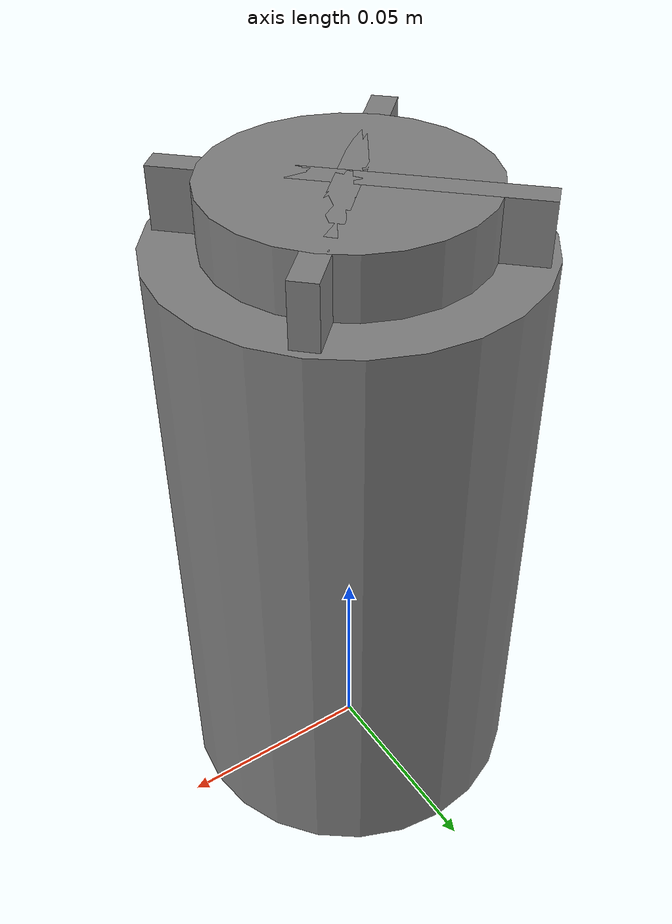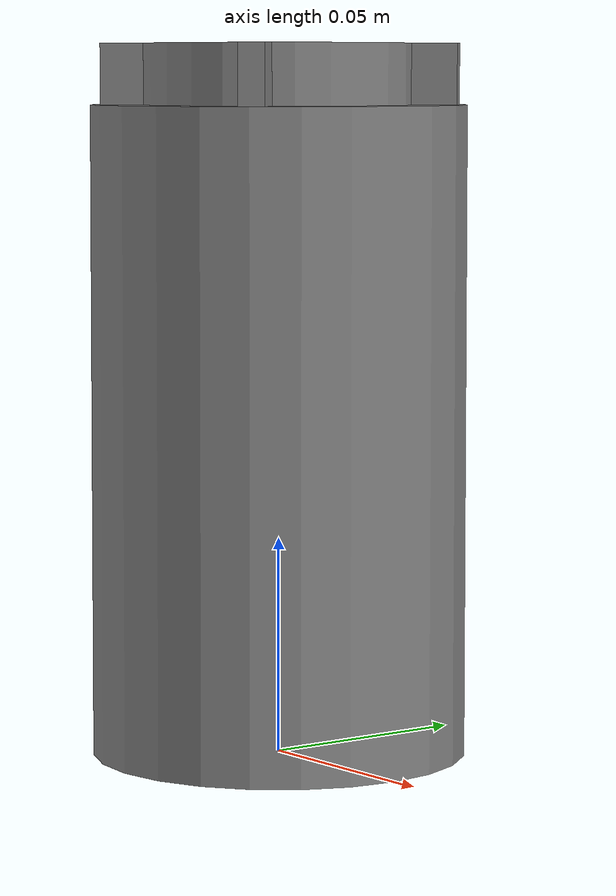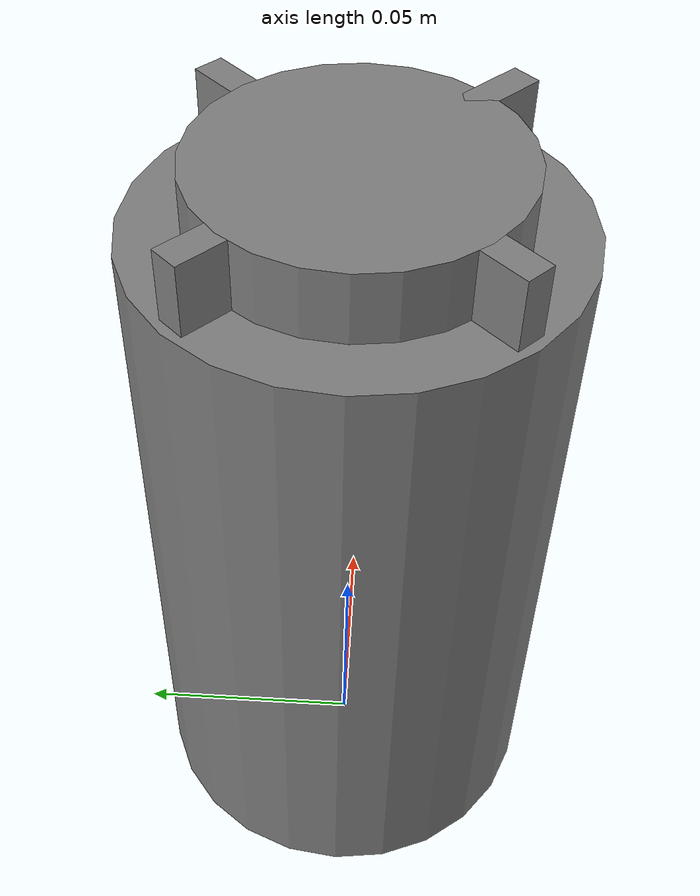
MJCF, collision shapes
<?xml version="1.0" ?>
<!-- @bbox dx=0.086 dy=0.086 dz=0.150 -->
<mujoco model="aspirin_pill_bottle">
  <asset>
    <texture type="2d" name="Diffuse" file="Diffuse.png"/>
    <material name="Diffuse" texture="Diffuse" specular="0.4" shininess="0.001"/>
    <mesh file="aspirin_pill_bottle_body.obj" scale="1 1 1"/>
    <mesh file="aspirin_pill_bottle_cap.obj" scale="1 1 1"/>
  </asset>
  <worldbody>
    <body name="aspirin_pill_bottle" pos="0 0 0">
      <inertial pos="0 0 0.075" mass="0.05" diaginertia="0.0008 0.0008 0.0005"/>
      <geom material="Diffuse" mesh="aspirin_pill_bottle_body" class="visual"/>
      <geom type="cylinder" size="0.0432 0.075" pos="0 0 0.075" class="collision" contype="1" conaffinity="1"/>
      <geom name="neck_collision" type="cylinder" size="0.0288 0.025" pos="0 0 0.13" class="collision" contype="2" conaffinity="2"/>
      <site class="keypoint" pos="0.0432 -0.0432 0.0000"/>
      <site class="keypoint" pos="-0.0432 0.0432 0.0000"/>
      <site class="keypoint" pos="0.0432 0.0432 0.0000"/>
      <site class="keypoint" pos="-0.0432 -0.0432 0.0000"/>
      <site class="placepoint" pos="0.0000 0.0000 0.1537"/>
      <site name="top_site" pos="0 0 0.15" size="0.01" rgba="1 0 0 0"/>
      <site name="bottom_site" pos="0 0 0.0" size="0.01" rgba="0 1 0 0"/>
      <body name="cap" pos="0 0 0.143408">
        <joint name="door" type="hinge" pos="0 0 0" axis="0 0 1" range="-12.5664 0" damping="2"/>
        <joint name="cap_slide" type="slide" pos="0 0 0" axis="0 0 1" range="0 0" damping="100000"/>
        <geom material="Diffuse" mesh="aspirin_pill_bottle_cap" class="visual"/>
        <geom type="cylinder" size="0.0311 0.0103" pos="0 0 0.0103" class="collision" contype="2" conaffinity="1"/>
        <!-- Visual plates (contype=0 conaffinity=0 → rgba renders fully). Rotated 45°. -->
        <!-- Collision plates (contype=2 conaffinity=2). Rotated 45°. -->
        <geom name="grip_plate_x" type="box" size="0.0411 0.003 0.0103" pos="0 0 0.0103" quat="0.9238795 0 0 0.3826834" contype="2" conaffinity="2" group="3" friction="1 1 0.1" density="50" solref="0.001 1"/>
        <geom name="grip_plate_y" type="box" size="0.003 0.0411 0.0103" pos="0 0 0.0103" quat="0.9238795 0 0 0.3826834" contype="2" conaffinity="2" group="3" friction="1 1 0.1" density="50" solref="0.001 1"/>
        <site class="grasppoint" pos="0.0000 0.0000 0.0150"/>
      </body>
    </body>
  </worldbody>
  <compiler boundmass="0.015" boundinertia="1e-05" angle="radian"/>
  <default>
    <default class="visual">
      <geom group="2" type="mesh" contype="0" conaffinity="0" density="50"/>
    </default>
    <default class="keypoint">
      <site type="sphere" size="0.01" group="3" rgba="1 0 0 1"/>
    </default>
    <default class="placepoint">
      <site type="sphere" size="0.01" group="2" rgba="0 0 1 0"/>
    </default>
    <default class="collision">
      <geom group="3" type="mesh" density="50" friction="1 1 0.1" solimp="0.998 0.998 0.001" solref="0.02 1"/>
    </default>
    <default class="grasppoint">
      <site type="sphere" size="0.005" group="4" rgba="0 0 1 1"/>
    </default>
  </default>
  <contact>
    <exclude body1="aspirin_pill_bottle" body2="cap"/>
  </contact>
</mujoco>
